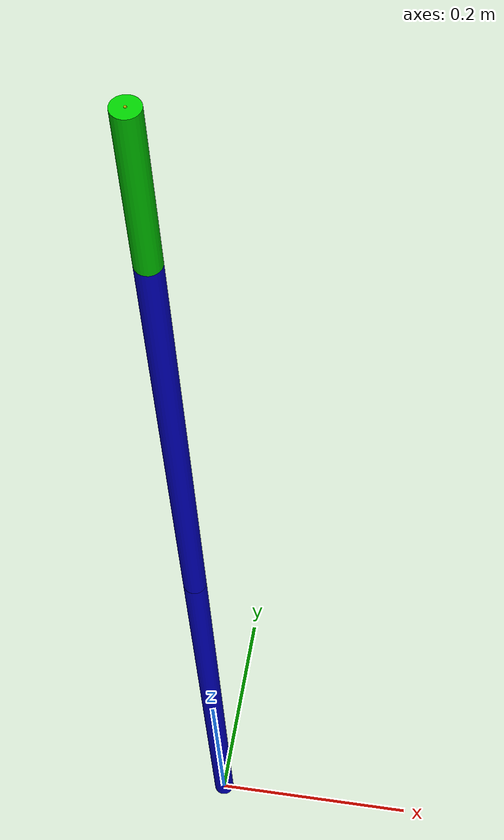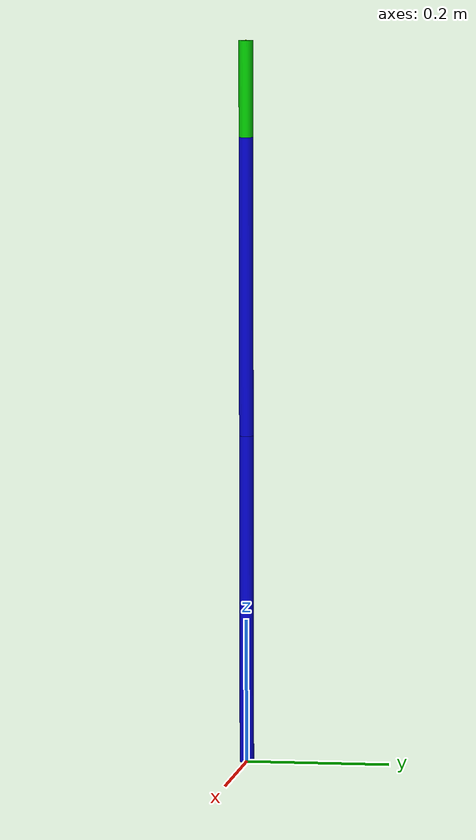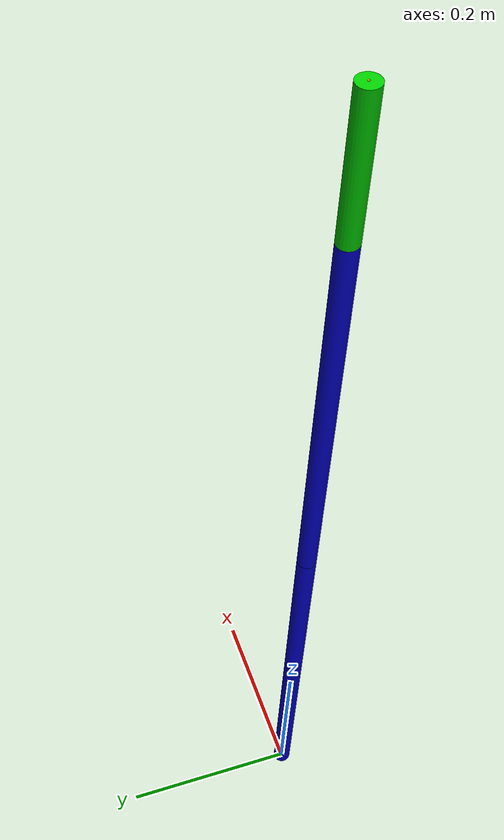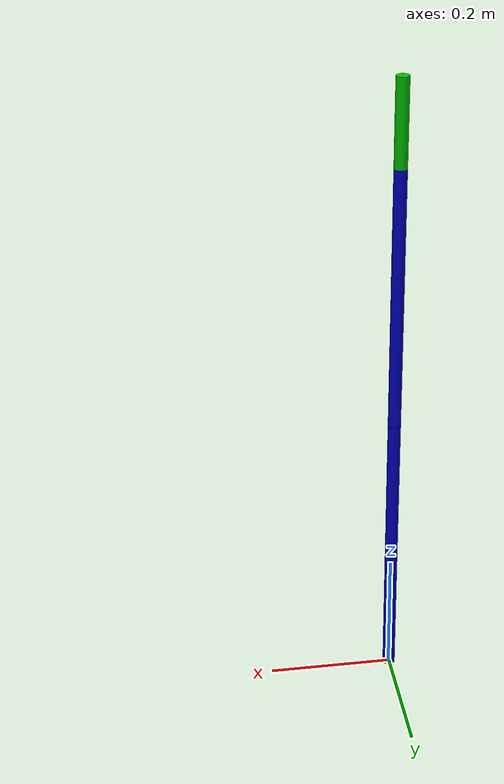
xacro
<?xml version="1.0"?>
<robot name="simple_arm_3link" xmlns:xacro="http://www.ros.org/wiki/xacro">

  <link name="world"/>

  <xacro:property name="base_radius" value="0.0" />
  <xacro:property name="base_height" value="0.0" />
  <xacro:property name="gap_between_base_turret" value="0" />
  <xacro:property name="first_arm_length" value="0.45857" />
  <xacro:property name="first_arm_radius" value="0.01" />
  <xacro:property name="first_arm_mass" value="0.5" />

  <xacro:property name="second_arm_length" value="0.41476" />
  <xacro:property name="second_arm_radius" value="0.01" />
  <xacro:property name="second_arm_mass" value="0.5" />

  <!-- 添加第三连杆属性 -->
  <xacro:property name="third_arm_length" value="0.1335" />
  <xacro:property name="third_arm_radius" value="0.01" />
  <xacro:property name="third_arm_mass" value="0.3" />

  <!-- 添加末端小球属性 -->
  <xacro:property name="end_effector_radius" value="0.001" />
  <xacro:property name="end_effector_mass" value="0.001" />

  <xacro:property name="joint_damping" value="1.0" />
  <xacro:property name="joint_effort" value="20" />
  <xacro:property name="joint_velocity" value="1.0" />

  <xacro:property name="base_mass" value="1.0" />
  <xacro:property name="turret_mass" value="0.5" />

  <xacro:macro name="position_joint_transmission" params="joint_name trans_name hardware_interface">
    <transmission name="${trans_name}">
      <type>transmission_interface/SimpleTransmission</type>
      <joint name="${joint_name}">
        <hardwareInterface>${hardware_interface}</hardwareInterface>
      </joint>
      <actuator name="${joint_name}_motor">
        <hardwareInterface>${hardware_interface}</hardwareInterface>
        <mechanicalReduction>1</mechanicalReduction>
      </actuator>
    </transmission>
  </xacro:macro>

  <material name="blue">
    <color rgba="0 0 0.8 1"/>
  </material>
  <material name="gray">
    <color rgba="0.7 0.7 0.7 1"/>
  </material>
  <material name="red">
    <color rgba="0.8 0 0 1"/>
  </material>
  <!-- 添加绿色材料用于第三连杆 -->
  <material name="green">
    <color rgba="0 0.8 0 1"/>
  </material>
  <!-- 添加黄色材料用于末端小球 -->
  <material name="yellow">
    <color rgba="0.8 0.8 0 1"/>
  </material>

  <link name="base_link">
    <inertial>
      <mass value="${base_mass}"/>
      <origin xyz="0 0 0"/>
      <inertia ixx="${(1/12)*base_mass*(3*base_radius**2 + base_height**2)}"
               ixy="0" ixz="0"
               iyy="${(1/12)*base_mass*(3*base_radius**2 + base_height**2)}"
               iyz="0"
               izz="${(1/2)*base_mass*base_radius**2}"/>
    </inertial>
    <visual>
      <geometry>
        <cylinder length="${base_height}" radius="${base_radius}"/>
      </geometry>
      <material name="gray"/>
    </visual>
    <collision>
      <geometry>
        <cylinder length="${base_height}" radius="${base_radius}"/>
      </geometry>
    </collision>
  </link>

  <joint name="world_to_base_fixed" type="fixed">
    <parent link="world"/>
    <child link="base_link"/>
    <origin xyz="0 0 0" rpy="0 0 0"/>
  </joint>

  <link name="turret_link">
    <inertial>
      <mass value="${turret_mass}"/>
      <origin xyz="0 0 0"/>
      <inertia ixx="${(1/12)*turret_mass*(3*base_radius**2 + base_height**2)}"
               ixy="0" ixz="0"
               iyy="${(1/12)*turret_mass*(3*base_radius**2 + base_height**2)}"
               iyz="0"
               izz="${(1/2)*turret_mass*base_radius**2}"/>
    </inertial>

    <visual name="turret_blue_part">
      <origin xyz="0 0 ${-base_height/4}" />
      <geometry>
        <cylinder length="${base_height/2}" radius="${base_radius}"/>
      </geometry>
      <material name="blue"/>
    </visual>
    <visual name="turret_red_part">
      <origin xyz="0 0 ${base_height/4}" />
      <geometry>
        <cylinder length="${base_height/2}" radius="${base_radius}"/>
      </geometry>
      <material name="red"/>
    </visual>

    <collision>
      <geometry>
        <cylinder length="${base_height}" radius="${base_radius}"/>
      </geometry>
    </collision>
  </link>

  <joint name="base_to_turret" type="revolute">
    <parent link="base_link"/>
    <child link="turret_link"/>
    <origin xyz="0 0 ${base_height + gap_between_base_turret + base_height/2}" rpy="0 0 0"/>
    <axis xyz="0 0 1"/>
    <limit lower="-3.14" upper="3.14" effort="${joint_effort}" velocity="${joint_velocity}"/>
    <dynamics damping="${joint_damping}" friction="0.1"/>
  </joint>

  <gazebo joint="base_to_turret">
    <hardwareInterface>hardware_interface/PositionJointInterface</hardwareInterface>
  </gazebo>

  <xacro:position_joint_transmission
    joint_name="base_to_turret"
    trans_name="base_to_turret_trans"
    hardware_interface="hardware_interface/PositionJointInterface" />

  <!-- 第一连杆 -->
  <link name="first_arm_link">
    <inertial>
      <mass value="${first_arm_mass}"/>
      <origin xyz="0 0 ${first_arm_length/2}"/> <!-- 重心在连杆中心 -->
      <inertia ixx="${(1/12)*first_arm_mass*(3*first_arm_radius**2 + first_arm_length**2)}"
               ixy="0" ixz="0"
               iyy="${(1/12)*first_arm_mass*(3*first_arm_radius**2 + first_arm_length**2)}"
               iyz="0"
               izz="${(1/2)*first_arm_mass*first_arm_radius**2}"/>
    </inertial>
    <visual>
      <origin xyz="0 0 ${first_arm_length/2}"/> <!-- 圆柱体中心在连杆中心 -->
      <geometry>
        <cylinder length="${first_arm_length}" radius="${first_arm_radius}"/>
      </geometry>
      <material name="blue"/>
    </visual>
    <collision>
      <origin xyz="0 0 ${first_arm_length/2}"/> <!-- 碰撞体中心也在连杆中心 -->
      <geometry>
        <cylinder length="${first_arm_length}" radius="${first_arm_radius}"/>
      </geometry>
    </collision>
  </link>

  <!-- 第一连杆关节：位于云台上表面，第一连杆下表面与云台上表面连接 -->
  <joint name="turret_to_first_arm" type="revolute">
    <parent link="turret_link"/>
    <child link="first_arm_link"/>
    <!-- 关节位于云台上表面，第一连杆下表面与云台上表面连接 -->
    <origin xyz="0 0 ${base_height/2}" rpy="0 0 0"/>
    <axis xyz="0 1 0"/>
    <limit lower="0" upper="1.57" effort="${joint_effort}" velocity="${joint_velocity}"/>
    <dynamics damping="${joint_damping}" friction="0.1"/>
  </joint>

  <gazebo joint="turret_to_first_arm">
    <hardwareInterface>hardware_interface/PositionJointInterface</hardwareInterface>
  </gazebo>

  <xacro:position_joint_transmission
    joint_name="turret_to_first_arm"
    trans_name="turret_to_first_arm_trans"
    hardware_interface="hardware_interface/PositionJointInterface" />

  <!-- 第二连杆 -->
  <link name="second_arm_link">
    <inertial>
      <mass value="${second_arm_mass}"/>
      <origin xyz="0 0 ${second_arm_length/2}"/> <!-- 重心在连杆中心 -->
      <inertia ixx="${(1/12)*second_arm_mass*(3*second_arm_radius**2 + second_arm_length**2)}"
               ixy="0" ixz="0"
               iyy="${(1/12)*second_arm_mass*(3*second_arm_radius**2 + second_arm_length**2)}"
               iyz="0"
               izz="${(1/2)*second_arm_mass*second_arm_radius**2}"/>
    </inertial>
    <visual>
      <origin xyz="0 0 ${second_arm_length/2}"/> <!-- 圆柱体中心在连杆中心 -->
      <geometry>
        <cylinder length="${second_arm_length}" radius="${second_arm_radius}"/>
      </geometry>
      <material name="blue"/>
    </visual>
    <collision>
      <origin xyz="0 0 ${second_arm_length/2}"/> <!-- 碰撞体中心也在连杆中心 -->
      <geometry>
        <cylinder length="${second_arm_length}" radius="${second_arm_radius}"/>
      </geometry>
    </collision>
  </link>

  <!-- 第二连杆关节：位于第一连杆上表面，第二连杆下表面与第一连杆上表面连接 -->
  <joint name="first_to_second_arm" type="revolute">
    <parent link="first_arm_link"/>
    <child link="second_arm_link"/>
    <!-- 关节位于第一连杆上表面 -->
    <origin xyz="0 0 ${first_arm_length}" rpy="0 0 0"/>
    <axis xyz="0 1 0"/>
    <limit lower="0" upper="3.14" effort="${joint_effort}" velocity="${joint_velocity}"/>
    <dynamics damping="${joint_damping}" friction="0.1"/>
  </joint>

  <gazebo joint="first_to_second_arm">
    <hardwareInterface>hardware_interface/PositionJointInterface</hardwareInterface>
  </gazebo>

  <xacro:position_joint_transmission
    joint_name="first_to_second_arm"
    trans_name="first_to_second_arm_trans"
    hardware_interface="hardware_interface/PositionJointInterface" />

  <!-- 第三连杆 -->
  <link name="third_arm_link">
    <inertial>
      <mass value="${third_arm_mass}"/>
      <origin xyz="0 0 ${third_arm_length/2}"/> <!-- 重心在连杆中心 -->
      <inertia ixx="${(1/12)*third_arm_mass*(3*third_arm_radius**2 + third_arm_length**2)}"
               ixy="0" ixz="0"
               iyy="${(1/12)*third_arm_mass*(3*third_arm_radius**2 + third_arm_length**2)}"
               iyz="0"
               izz="${(1/2)*third_arm_mass*third_arm_radius**2}"/>
    </inertial>
    <visual>
      <origin xyz="0 0 ${third_arm_length/2}"/> <!-- 圆柱体中心在连杆中心 -->
      <geometry>
        <cylinder length="${third_arm_length}" radius="${third_arm_radius}"/>
      </geometry>
      <material name="green"/>
    </visual>
    <collision>
      <origin xyz="0 0 ${third_arm_length/2}"/> <!-- 碰撞体中心也在连杆中心 -->
      <geometry>
        <cylinder length="${third_arm_length}" radius="${third_arm_radius}"/>
      </geometry>
    </collision>
  </link>

  <!-- 第三连杆关节：位于第二连杆上表面，第三连杆下表面与第二连杆上表面连接 -->
  <joint name="second_to_third_arm" type="revolute">
    <parent link="second_arm_link"/>
    <child link="third_arm_link"/>
    <!-- 关节位于第二连杆上表面 -->
    <origin xyz="0 0 ${second_arm_length}" rpy="0 0 0"/>
    <axis xyz="0 1 0"/>
    <limit lower="0" upper="3.14" effort="${joint_effort}" velocity="${joint_velocity}"/>
    <dynamics damping="${joint_damping}" friction="0.1"/>
  </joint>

  <gazebo joint="second_to_third_arm">
    <hardwareInterface>hardware_interface/PositionJointInterface</hardwareInterface>
  </gazebo>

  <xacro:position_joint_transmission
    joint_name="second_to_third_arm"
    trans_name="second_to_third_arm_trans"
    hardware_interface="hardware_interface/PositionJointInterface" />

  <!-- 末端小球链接 -->
  <link name="end_effector_link">
    <inertial>
      <mass value="${end_effector_mass}"/>
      <origin xyz="0 0 0"/>
      <!-- 球体的惯性矩阵 -->
      <inertia ixx="${(2/5)*end_effector_mass*end_effector_radius**2}"
               ixy="0" ixz="0"
               iyy="${(2/5)*end_effector_mass*end_effector_radius**2}"
               iyz="0"
               izz="${(2/5)*end_effector_mass*end_effector_radius**2}"/>
    </inertial>
    <visual>
      <geometry>
        <sphere radius="${end_effector_radius}"/>
      </geometry>
      <material name="yellow"/>
    </visual>
    <collision>
      <geometry>
        <sphere radius="${end_effector_radius}"/>
      </geometry>
    </collision>
  </link>

  <!-- 末端小球关节：固定关节连接到第三连杆末端 -->
  <joint name="third_arm_to_end_effector" type="fixed">
    <parent link="third_arm_link"/>
    <child link="end_effector_link"/>
    <!-- 关节位于第三连杆末端 -->
    <origin xyz="0 0 ${third_arm_length}" rpy="0 0 0"/>
  </joint>

  <gazebo>
    <plugin name="gazebo_ros_control" filename="libgazebo_ros_control.so">
      <robotNamespace>/</robotNamespace>
      <robotSimType>gazebo_ros_control/DefaultRobotHWSim</robotSimType>
    </plugin>
  </gazebo>

  <!-- 障碍物：固定立方体（位于机械臂运动路径上，需避障） -->

  <!-- 障碍物固定到世界坐标系（位置：x=0.3, y=0.1, z=0.2，在机械臂工作空间内） -->

<!-- 新增：虚拟末端链接（second_arm_link 的终点） -->
<link name="second_arm_end">
  <!-- 无惯性（质量为0，不影响动力学） -->
  <inertial>
    <mass value="0.0"/>
    <inertia ixx="0.0" ixy="0.0" ixz="0.0"
             iyy="0.0" iyz="0.0"
             izz="0.0"/>
  </inertial>
  <!-- 可视化（可选，小原点标记终点，方便观察） -->
  <visual>
    <geometry>
      <sphere radius="0.005"/> <!-- 小原点，颜色为红色 -->
    </geometry>
    <material name="red"/>
  </visual>
  <!-- 无碰撞体（不影响避障） -->
  <collision>
    <geometry>
      <sphere radius="0.001"/>
    </geometry>
  </collision>
</link>

<!-- 新增：固定关节，将虚拟末端链接到 second_arm_link 的终点 -->
<joint name="second_arm_to_end" type="fixed">
  <parent link="second_arm_link"/>
  <child link="second_arm_end"/>
  <origin xyz="0 0 ${second_arm_length}" rpy="0 0 0"/> <!-- 沿 Z 轴平移到 second_arm_link 的终点 -->
</joint>

  <!-- 引入场地模型（zwei.urdf） -->

</robot>
